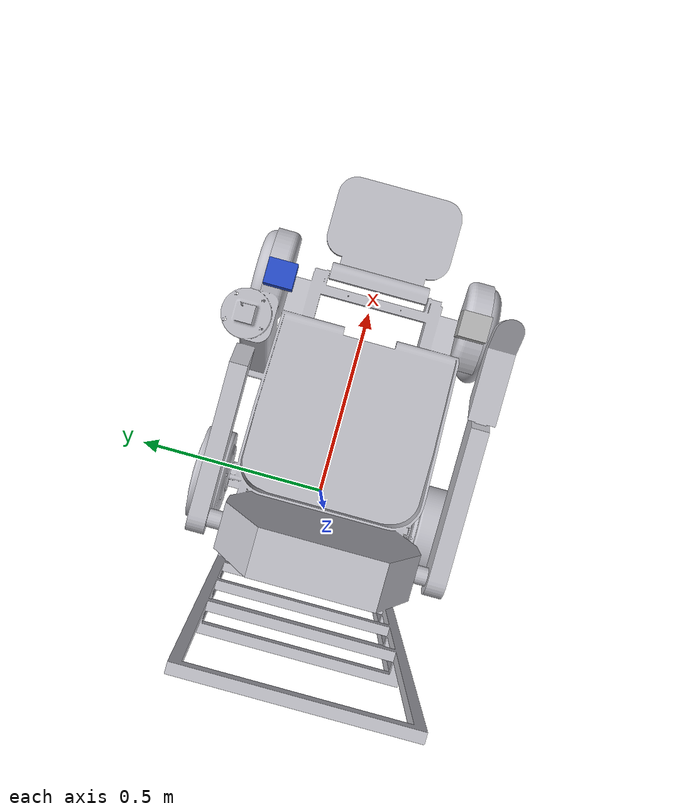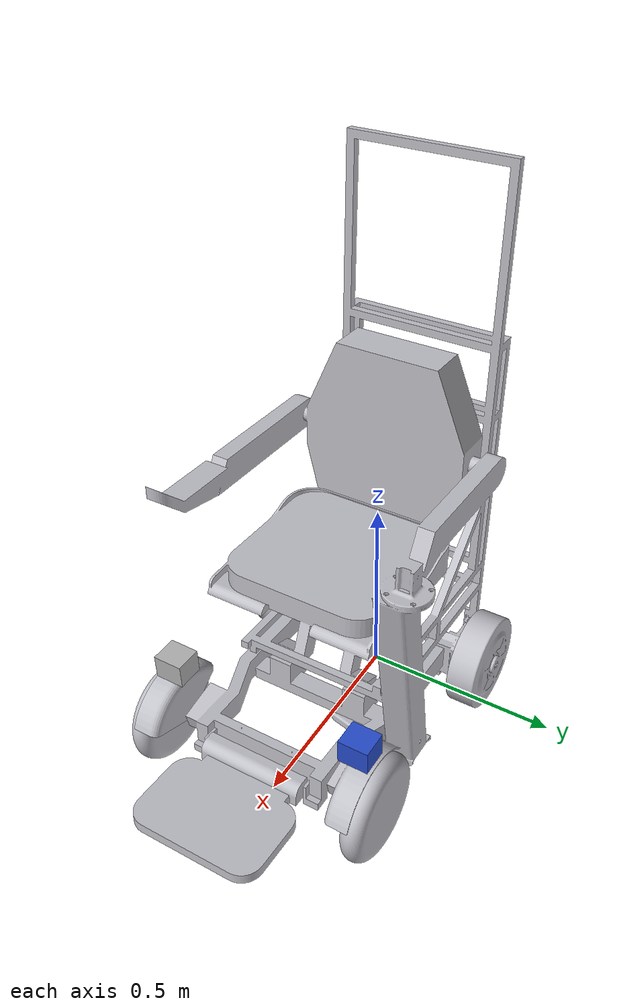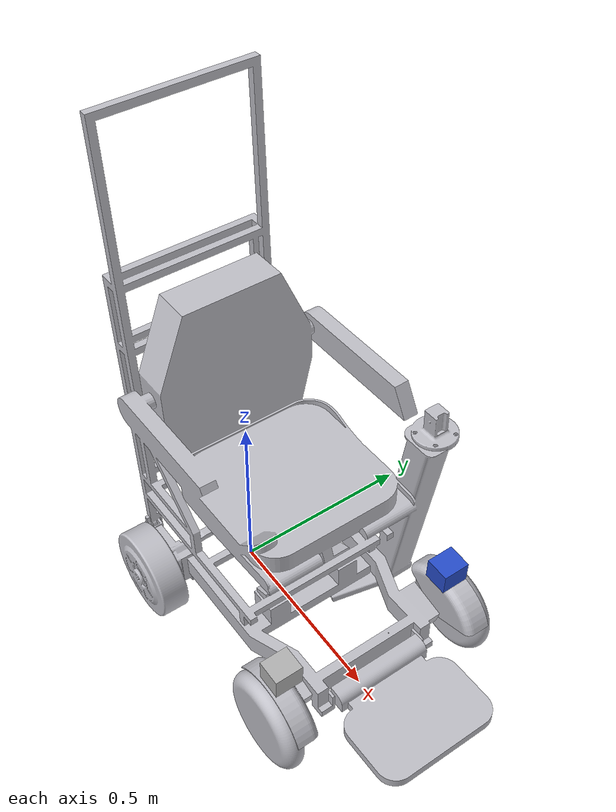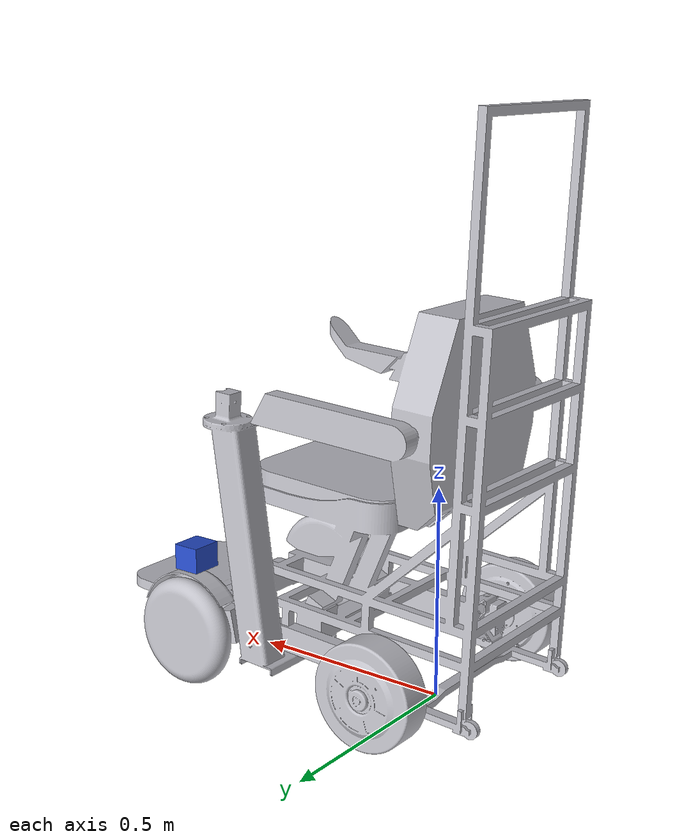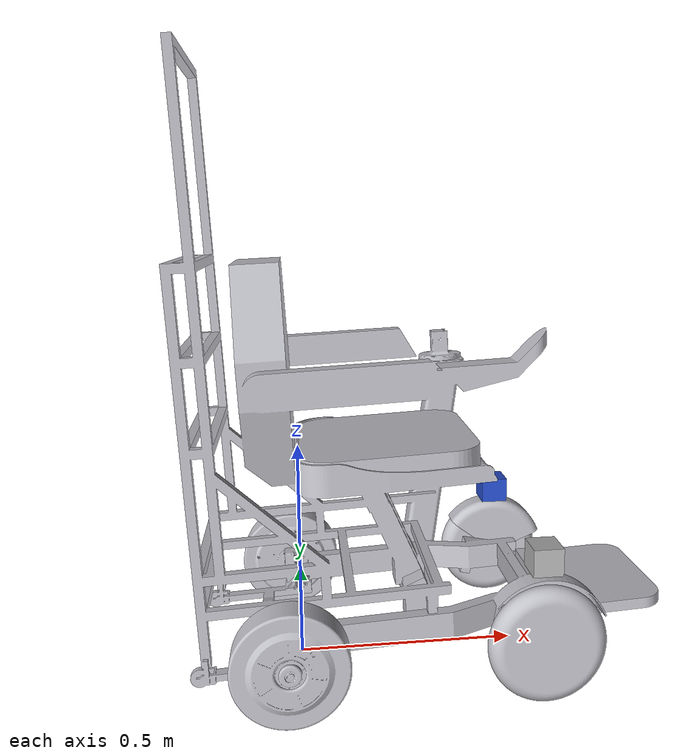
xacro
<?xml version="1.0" ?>
<robot name="wheelchair" xmlns:xacro="http://www.ros.org/wiki/xacro">

<xacro:include filename="$(find wheelchair_description)/urdf/materials.xacro" />
<xacro:include filename="$(find wheelchair_description)/urdf/wheelchair.trans" />
<xacro:include filename="$(find wheelchair_description)/urdf/wheelchair.gazebo" />

<link name="base_link">
  <inertial>
    <origin xyz="0 0 0" rpy="0 0 0"/>
    <mass value="332.01068376069776"/>
    <inertia ixx="28.453256" iyy="23.493643" izz="18.780017" ixy="0.242673" iyz="-7.755885" ixz="0.389285"/>
  </inertial>
  <visual>
    <origin xyz="0 0 0" rpy="0 0 0"/>
    <geometry>
      <mesh filename="package://wheelchair_description/meshes/base_link.stl" scale="0.001 0.001 0.001"/>
    </geometry>
    <material name="silver"/>
  </visual>
  <collision>
    <origin xyz="0 0 0" rpy="0 0 0"/>
    <geometry>
      <mesh filename="package://wheelchair_description/meshes/base_link.stl" scale="0.001 0.001 0.001"/>
    </geometry>
  </collision>
</link>

<link name="lip_1">
  <inertial>
    <origin xyz="0 0 0" rpy="0 0 0"/>
    <mass value="18.27800057815573"/>
    <inertia ixx="0.124422" iyy="0.14266" izz="0.263549" ixy="0.0" iyz="0.001029" ixz="-0.0"/>
  </inertial>
  <visual>
    <origin xyz="0 0 0" rpy="0 0 0"/>
    <geometry>
      <mesh filename="package://wheelchair_description/meshes/lip_1.stl" scale="0.001 0.001 0.001"/>
    </geometry>
    <material name="silver"/>
  </visual>
  <collision>
    <origin xyz="0 0 0" rpy="0 0 0"/>
    <geometry>
      <mesh filename="package://wheelchair_description/meshes/lip_1.stl" scale="0.001 0.001 0.001"/>
    </geometry>
  </collision>
</link>

<link name="front_right_1">
  <inertial>
    <origin xyz="0 0 0" rpy="0 0 0"/>
    <mass value="21.702165340628166"/>
    <inertia ixx="0.161714" iyy="0.086752" izz="0.086752" ixy="0.0" iyz="-0.0" ixz="-0.0"/>
  </inertial>
  <visual>
    <origin xyz="0 0 0" rpy="0 0 0"/>
    <geometry>
      <mesh filename="package://wheelchair_description/meshes/front.stl" scale="0.001 0.001 0.001"/>
    </geometry>
    <material name="silver"/>
  </visual>
  <collision>
    <origin xyz="0 0 0" rpy="0 0 0"/>
    <geometry>
      <mesh filename="package://wheelchair_description/meshes/front.stl" scale="0.001 0.001 0.001"/>
    </geometry>
  </collision>
</link>

<link name="front_left_1">
  <inertial>
    <origin xyz="0 0 0" rpy="0 0 3.14159"/>
    <mass value="21.702165340628156"/>
    <inertia ixx="0.161714" iyy="0.086752" izz="0.086752" ixy="-0.0" iyz="-0.0" ixz="0.0"/>
  </inertial>
  <visual>
    <origin xyz="0 0 0" rpy="0 0 3.14159"/>
    <geometry>
      <mesh filename="package://wheelchair_description/meshes/front.stl" scale="0.001 0.001 0.001"/>
    </geometry>
    <material name="silver"/>
  </visual>
  <collision>
    <origin xyz="0 0 0" rpy="0 0 3.14159"/>
    <geometry>
      <mesh filename="package://wheelchair_description/meshes/front.stl" scale="0.001 0.001 0.001"/>
    </geometry>
  </collision>
</link>

<link name="back_right_1">
  <inertial>
    <origin xyz="0 0 0" rpy="0 0 0"/>
    <mass value="17.247382273323833"/>
    <inertia ixx="0.169076" iyy="0.094827" izz="0.094827" ixy="1e-06" iyz="-1e-06" ixz="-1e-06"/>
  </inertial>
  <visual>
    <origin xyz="0 0 0" rpy="0 0 0"/>
    <geometry>
      <mesh filename="package://wheelchair_description/meshes/back.stl" scale="0.001 0.001 0.001"/>
    </geometry>
    <material name="silver"/>
  </visual>
  <collision>
    <origin xyz="0 0 0" rpy="0 0 0"/>
    <geometry>
      <mesh filename="package://wheelchair_description/meshes/back.stl" scale="0.001 0.001 0.001"/>
    </geometry>
  </collision>
</link>

<link name="back_left_1">
  <inertial>
    <origin xyz="0 0 0" rpy="0 0 3.14159"/>
    <mass value="17.247400849331317"/>
    <inertia ixx="0.169076" iyy="0.094827" izz="0.094827" ixy="-1e-06" iyz="-1e-06" ixz="1e-06"/>
  </inertial>
  <visual>
    <origin xyz="0 0 0" rpy="0 0 3.14159"/>
    <geometry>
      <mesh filename="package://wheelchair_description/meshes/back.stl" scale="0.001 0.001 0.001"/>
    </geometry>
    <material name="silver"/>
  </visual>
  <collision>
    <origin xyz="0 0 0" rpy="0 0 3.14159"/>
    <geometry>
      <mesh filename="package://wheelchair_description/meshes/back.stl" scale="0.001 0.001 0.001"/>
    </geometry>
  </collision>
</link>

  <link name="lidar_left">
    <inertial>
      <origin xyz="0 0 0" />
      <mass value="1.0" />
      <inertia  ixx="1.0" ixy="0.0"  ixz="0.0"  iyy="100.0"  iyz="0.0"  izz="1.0" />
    </inertial>
    <visual>
      <origin xyz="0 0 0"/>
      <geometry>
        <box size="0.065 0.073 0.06" />
      </geometry>
    </visual>
    <collision>
      <origin xyz="0 0 0"/>
      <geometry>
        <box size="0.065 0.073 0.06" />
      </geometry>
    </collision>
  </link>
  <gazebo reference="lidar_left">
    <material>Gazebo/Blue</material>
  </gazebo>

    <link name="lidar_right">
    <inertial>
      <origin xyz="0 0 0" />
      <mass value="1.0" />
      <inertia  ixx="1.0" ixy="0.0"  ixz="0.0"  iyy="100.0"  iyz="0.0"  izz="1.0" />
    </inertial>
    <visual>
      <origin xyz="0 0 0"/>
      <geometry>
        <box size="0.065 0.073 0.06" />
      </geometry>
    </visual>
    <collision>
      <origin xyz="0 0 0"/>
      <geometry>
        <box size="0.065 0.073 0.06" />
      </geometry>
    </collision>
  </link>
  <gazebo reference="lidar_left">
    <material>Gazebo/Blue</material>
  </gazebo>

<joint name="Revolute 1" type="revolute">
  <origin xyz="0.5589003610610962 -0.135  0.14078186452388763" rpy="0 0 0"/>
  <parent link="base_link"/>
  <child link="lip_1"/>
  <axis xyz="0 -1 0"/>
  <limit upper="1.570796" lower="0.0" effort="100" velocity="100"/>
</joint>

<joint name="Revolute 2" type="continuous">
  <origin xyz="0.5101467967033386 -0.27255433797836304  0.12812547385692596" rpy="0 0 0"/>
  <parent link="base_link"/>
  <child link="front_right_1"/>
  <axis xyz="0 -1 0"/>
</joint>

<joint name="Revolute 3" type="continuous">
  <origin xyz="0.5101467967033386 0.27255433797836304  0.12812547385692596" rpy="0 0 0"/>
  <parent link="base_link"/>
  <child link="front_left_1"/>
  <axis xyz="0 1 0"/>
</joint>

<joint name="Revolute 4" type="continuous">
  <origin xyz="-0.02398006245493889 -0.250498  0.12285605818033218" rpy="0 0 0"/>
  <parent link="base_link"/>
  <child link="back_right_1"/>
  <axis xyz="0 1 0"/>
</joint>

<joint name="Revolute 5" type="continuous">
  <origin xyz="-0.02398006245493889 0.250498  0.12285605818033218" rpy="0 0 0"/>
  <parent link="base_link"/>
  <child link="back_left_1"/>
  <axis xyz="0 1 0"/>
</joint>

<joint name="lidar_left_joint" type="fixed">
  <origin xyz="0.5101467967033386 0.24555433797836304 0.30312547385692596" rpy="0 0 0"/>
  <parent link="base_link"/>
  <child link="lidar_left"/>
</joint>

<joint name="lidar_right_joint" type="fixed">
  <origin xyz="0.5101467967033386  -0.24555433797836304 0.30312547385692596" rpy="0 0 0"/>
  <parent link="base_link"/>
  <child link="lidar_right"/>
</joint>

</robot>
